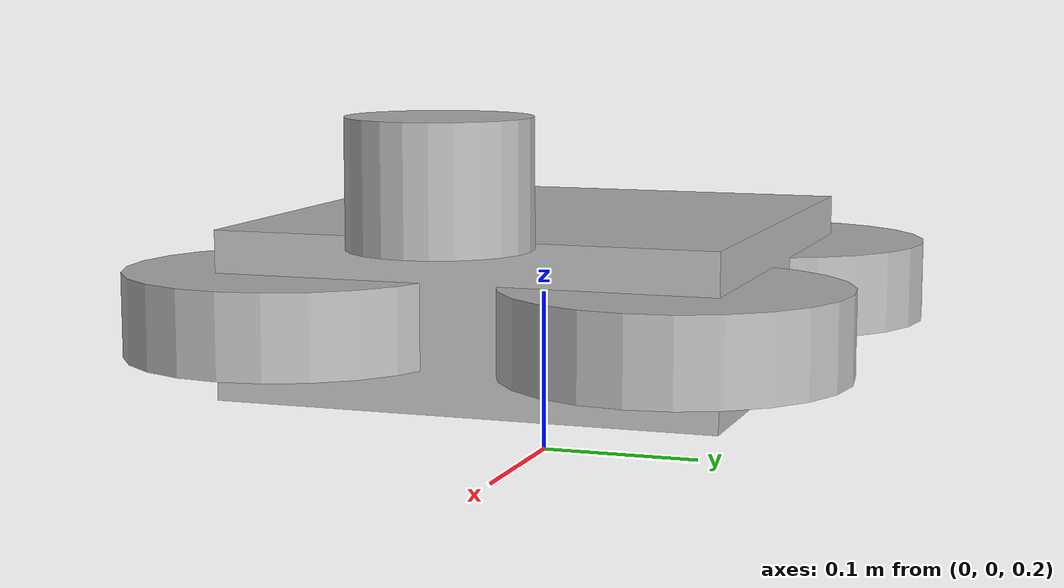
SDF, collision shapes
<?xml version="1.0"?>
<sdf version='1.6'>
    <model name='drone'>
        <link name='base_link'>
        <pose frame=''>0.000013 0.000013 0.3 0 -0 0</pose>
        <inertial>
            <mass> 1.5 </mass>
            <inertia>
                <ixx>0.0347563</ixx>
                <ixy>0</ixy>
                <ixz>0</ixz>
                <iyy>0.0458929</iyy>
                <iyz>0</iyz>
                <izz>0.0977</izz>
            </inertia>
        </inertial>
            <collision name='base_link_inertia_collision'>
                <pose frame=''>0 0 0 0 -0 0</pose>
                <geometry>
                    <box>
                        <size>0.3 0.3 0.1</size>
                    </box>
                </geometry>
            </collision>
            <visual name='base_link_inertia_visual'>
                <pose frame=''>0 0 0 0 -0 0</pose>
                <geometry>
                    <mesh>
                        <uri>model://drone/meshes/drone_base.dae</uri>
                        <scale>0.033 0.033 0.033</scale>
                    </mesh>
                </geometry>
            </visual>
        </link>
        <!-- Propellers -->
        <link name='elica_north'>
        <pose frame=''>0.116 0.116 0.3 0 -0 0</pose>
	    <inertial>
            <mass> 0.005 </mass>
            <inertia>
                <ixx>9.75e-07</ixx>
                <ixy>0</ixy>
                <ixz>0</ixz>
                <iyy>0.000273104</iyy>
                <iyz>0</iyz>
                <izz>0.000274004</izz>
            </inertia>
        </inertial>
            <collision name='elica_north_collision'>
            <pose frame=''>0 0 0 0 -0 0</pose>
                <geometry>
                    <cylinder>
              		    <radius>.1</radius>
              		    <length>.05</length>
            	    </cylinder>
                </geometry>
            </collision>
            <visual name='elica_north_visual'>
            <pose frame=''>0 0 0 0 -0 0</pose>
                <geometry>
                    <mesh>
                        <uri>model://drone/meshes/elica.obj</uri>
                        <scale>0.025 0.025 0.025</scale>
                    </mesh>
                </geometry>
            </visual>
        </link>
        <link name='elica_south'>
        <pose frame=''>-0.116 -0.116 0.3 0 -0 0</pose>
	    <inertial>
            <mass> 0.005 </mass>
            <inertia>
                <ixx>9.75e-07</ixx>
                <ixy>0</ixy>
                <ixz>0</ixz>
                <iyy>0.000273104</iyy>
                <iyz>0</iyz>
                <izz>0.000274004</izz>
            </inertia>
        </inertial>
            <collision name='elica_south_collision'>
            <pose frame=''>0 0 0 0 -0 0</pose>
                <geometry>
                    <cylinder>
                        <radius>.1</radius>
                        <length>.05</length>
                    </cylinder>
                </geometry>
            </collision>
            <visual name='elica_south_visual'>
            <pose frame=''>0 0 0 0 -0 0</pose>
                <geometry>
                    <mesh>
                        <uri>model://drone/meshes/elica.obj</uri>
                        <scale>0.025 0.025 0.025</scale>
                    </mesh>
                </geometry>
            </visual>
        </link>
        <link name='elica_east'>
        <pose frame=''>0.116 -0.116 0.3 0 -0 0</pose>
	    <inertial>
            <mass> 0.005 </mass>
            <inertia>
                <ixx>9.75e-07</ixx>
                <ixy>0</ixy>
                <ixz>0</ixz>
                <iyy>0.000273104</iyy>
                <iyz>0</iyz>
                <izz>0.000274004</izz>
            </inertia>
        </inertial>
            <collision name='elica_east_collision'>
            <pose frame=''>0 0 0 0 -0 0</pose>
                <geometry>
                    <cylinder>
                        <radius>.1</radius>
                        <length>.05</length>
                    </cylinder>
                </geometry>
            </collision>
            <visual name='elica_east_visual'>
            <pose frame=''>0 0 0 0 -0 0</pose>
                <geometry>
                    <mesh>
                        <uri>model://drone/meshes/elica.obj</uri>
                        <scale>0.025 0.025 0.025</scale>
                    </mesh>
                </geometry>
            </visual>
        </link>
        <link name='elica_west'>
        <pose frame=''>-0.116 0.116 0.3 0 -0 0</pose>
	    <inertial>
            <mass> 0.005 </mass>
            <inertia>
                <ixx>9.75e-07</ixx>
                <ixy>0</ixy>
                <ixz>0</ixz>
                <iyy>0.000273104</iyy>
                <iyz>0</iyz>
                <izz>0.000274004</izz>
            </inertia>
        </inertial>
            <collision name='elica_west_collision'>
            <pose frame=''>0 0 0 0 -0 0</pose>
                <geometry>
                    <cylinder>
                        <radius>.1</radius>
                        <length>.05</length>
                    </cylinder>
                </geometry>
            </collision>
            <visual name='elica_west_visual'>
            <pose frame=''>0 0 0 0 -0 0</pose>
                <geometry>
                    <mesh>
                        <uri>model://drone/meshes/elica.obj</uri>
                        <scale>0.025 0.025 0.025</scale>
                    </mesh>
                </geometry>
            </visual>
        </link>

        <!--joints for the propellers-->
        <joint type="revolute" name="north_blade_hinge">
            <child>elica_north</child>
            <parent>base_link</parent>
            <axis>
                <xyz>0 0 1</xyz>
                <use_parent_model_frame>1</use_parent_model_frame>
            </axis>
        </joint>

        <joint type="revolute" name="south_blade_hinge">
            <child>elica_south</child>
            <parent>base_link</parent>
            <axis>
                <xyz>0 0 1</xyz>
                <use_parent_model_frame>1</use_parent_model_frame>
            </axis>
        </joint>

        <joint type="revolute" name="east_blade_hinge">
            <child>elica_east</child>
            <parent>base_link</parent>
            <axis>
                <xyz>0 0 1</xyz>
                <use_parent_model_frame>1</use_parent_model_frame>
            </axis>
        </joint>

        <joint type="revolute" name="west_blade_hinge">
            <child>elica_west</child>
            <parent>base_link</parent>
            <axis>
                <xyz>0 0 1</xyz>
                <use_parent_model_frame>1</use_parent_model_frame>
            </axis>
        </joint>

        <!-- Plugin space -->

        <!-- movement for the drone-->
        <plugin name="simple_movement" filename="lib_simple_movement.so"/>

        <!-- Servo and Velodyne plugins -->
        <include>
            <uri>model://servo_ax12a</uri>
            <pose>0.09 0.00 0.335 0 0 1.58</pose>
        </include>
        <joint name='servo_ax12a_joint' type='fixed'>
            <child>servo_ax12a::Body</child>
            <parent>base_link</parent>
        </joint>

        <include>
            <uri>model://VLP-16</uri>
            <pose>0.175 0.00 0.3485 0 -0 0</pose>
        </include>
        <joint name='vlp16_joint' type='fixed'>
            <child>VLP-16::velodyne_base_link</child>
            <parent>servo_ax12a::Wheel</parent>
        </joint>
    </model>
</sdf>

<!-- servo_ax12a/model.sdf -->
<sdf version='1.6'>
  <model name='servo_ax12a'>
      <plugin name="ax12a" filename="libservo_pkg.so">
        <topic>/gazebo/servos/ax12a</topic>
      </plugin>
    <link name='Body'>
      <inertial>
        <mass>0.05</mass>
        <inertia>
          <ixx>1.643e-05</ixx>
          <ixy>0</ixy>
          <ixz>0</ixz>
          <iyy>1.468e-05</iyy>
          <iyz>0</iyz>
          <izz>1.028e-05</izz>
        </inertia>
        <pose frame=''>0 0 0 0 -0 0</pose>
      </inertial>
      <pose frame=''>0 0 0 0 -0 0</pose>
      <gravity>1</gravity>
      <self_collide>0</self_collide>
      <kinematic>0</kinematic>
      <enable_wind>0</enable_wind>
      <visual name='visual'>
        <pose frame=''>0 0 0 0 -0 0</pose>
        <geometry>
          <box>
            <size>0.032 0.032 0.05</size>
          </box>
        </geometry>
        <material>
          <lighting>1</lighting>
          <script>
            <uri>file://media/materials/scripts/gazebo.material</uri>
            <name>Gazebo/Grey</name>
          </script>
          <shader type='vertex'>
            <normal_map>__default__</normal_map>
          </shader>
          <ambient>0.1 0.1 0.1 1</ambient>
          <diffuse>0.1 0.1 0.1 1</diffuse>
          <specular>0.01 0.01 0.01 1</specular>
          <emissive>0 0 0 1</emissive>
        </material>
        <transparency>0</transparency>
        <cast_shadows>1</cast_shadows>
      </visual>
      <collision name='collision'>
        <laser_retro>0</laser_retro>
        <max_contacts>10</max_contacts>
        <pose frame=''>0 0 0 0 -0 0</pose>
        <geometry>
          <box>
            <size>0.032 0.032 0.05</size>
          </box>
        </geometry>
        <surface>
          <friction>
            <ode>
              <mu>1</mu>
              <mu2>1</mu2>
              <fdir1>0 0 0</fdir1>
              <slip1>0</slip1>
              <slip2>0</slip2>
            </ode>
            <torsional>
              <coefficient>1</coefficient>
              <patch_radius>0</patch_radius>
              <surface_radius>0</surface_radius>
              <use_patch_radius>1</use_patch_radius>
              <ode>
                <slip>0</slip>
              </ode>
            </torsional>
          </friction>
          <bounce>
            <restitution_coefficient>0</restitution_coefficient>
            <threshold>1e+06</threshold>
          </bounce>
          <contact>
            <collide_without_contact>0</collide_without_contact>
            <collide_without_contact_bitmask>1</collide_without_contact_bitmask>
            <collide_bitmask>1</collide_bitmask>
            <ode>
              <soft_cfm>0</soft_cfm>
              <soft_erp>0.2</soft_erp>
              <kp>1e+13</kp>
              <kd>1</kd>
              <max_vel>0.01</max_vel>
              <min_depth>0</min_depth>
            </ode>
            <bullet>
              <split_impulse>1</split_impulse>
              <split_impulse_penetration_threshold>-0.01</split_impulse_penetration_threshold>
              <soft_cfm>0</soft_cfm>
              <soft_erp>0.2</soft_erp>
              <kp>1e+13</kp>
              <kd>1</kd>
            </bullet>
          </contact>
        </surface>
      </collision>
    </link>
    <link name='Wheel'>
      <inertial>
        <mass>0.005</mass>
        <inertia>
          <ixx>1.6e-07</ixx>
          <ixy>0</ixy>
          <ixz>0</ixz>
          <iyy>1.6e-07</iyy>
          <iyz>0</iyz>
          <izz>3e-07</izz>
        </inertia>
        <pose frame=''>0 0 0 0 -0 0</pose>
      </inertial>
      <pose frame=''>0 -0.0185 0.0135 1.5708 -0 0</pose>
      <gravity>1</gravity>
      <self_collide>0</self_collide>
      <kinematic>0</kinematic>
      <enable_wind>0</enable_wind>
      <visual name='visual'>
        <pose frame=''>0 0 0 0 -0 0</pose>
        <geometry>
          <cylinder>
            <radius>0.011</radius>
            <length>0.005</length>
          </cylinder>
        </geometry>
        <material>
          <lighting>1</lighting>
          <script>
            <uri>file://media/materials/scripts/gazebo.material</uri>
            <name>Gazebo/Grey</name>
          </script>
          <shader type='vertex'>
            <normal_map>__default__</normal_map>
          </shader>
          <ambient>0.3 0.3 0.3 1</ambient>
          <diffuse>0.7 0.7 0.7 1</diffuse>
          <specular>0.01 0.01 0.01 1</specular>
          <emissive>0 0 0 1</emissive>
        </material>
        <transparency>0</transparency>
        <cast_shadows>1</cast_shadows>
      </visual>
      <collision name='collision'>
        <laser_retro>0</laser_retro>
        <max_contacts>10</max_contacts>
        <pose frame=''>0 0 0 0 -0 0</pose>
        <geometry>
          <cylinder>
            <radius>0.011</radius>
            <length>0.005</length>
          </cylinder>
        </geometry>
        <surface>
          <friction>
            <ode>
              <mu>1</mu>
              <mu2>1</mu2>
              <fdir1>0 0 0</fdir1>
              <slip1>0</slip1>
              <slip2>0</slip2>
            </ode>
            <torsional>
              <coefficient>1</coefficient>
              <patch_radius>0</patch_radius>
              <surface_radius>0</surface_radius>
              <use_patch_radius>1</use_patch_radius>
              <ode>
                <slip>0</slip>
              </ode>
            </torsional>
          </friction>
          <bounce>
            <restitution_coefficient>0</restitution_coefficient>
            <threshold>1e+06</threshold>
          </bounce>
          <contact>
            <collide_without_contact>0</collide_without_contact>
            <collide_without_contact_bitmask>1</collide_without_contact_bitmask>
            <collide_bitmask>1</collide_bitmask>
            <ode>
              <soft_cfm>0</soft_cfm>
              <soft_erp>0.2</soft_erp>
              <kp>1e+13</kp>
              <kd>1</kd>
              <max_vel>0.01</max_vel>
              <min_depth>0</min_depth>
            </ode>
            <bullet>
              <split_impulse>1</split_impulse>
              <split_impulse_penetration_threshold>-0.01</split_impulse_penetration_threshold>
              <soft_cfm>0</soft_cfm>
              <soft_erp>0.2</soft_erp>
              <kp>1e+13</kp>
              <kd>1</kd>
            </bullet>
          </contact>
        </surface>
      </collision>
    </link>
    <joint name='j_Body_Wheel' type='revolute'>
      <parent>Body</parent>
      <child>Wheel</child>
      <pose frame=''>0 0 0 0 -0 0</pose>
      <axis>
        <xyz>0 0 1</xyz>
        <use_parent_model_frame>0</use_parent_model_frame>
        <limit>
          <lower>-1.79769e+308</lower>
          <upper>1.79769e+308</upper>
          <effort>-1</effort>
          <velocity>-1</velocity>
        </limit>
        <dynamics>
          <spring_reference>0</spring_reference>
          <spring_stiffness>0</spring_stiffness>
          <damping>0.01</damping>
        </dynamics>
      </axis>
      <physics>
        <ode>
          <limit>
            <cfm>0</cfm>
            <erp>0.2</erp>
          </limit>
          <suspension>
            <cfm>0</cfm>
            <erp>0.2</erp>
          </suspension>
        </ode>
      </physics>
    </joint>
    <static>0</static>
    <allow_auto_disable>1</allow_auto_disable>
  </model>
</sdf>

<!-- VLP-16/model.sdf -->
<sdf version='1.6'>
  <model name='VLP-16'>
    <link name='velodyne_base_link'>
      <pose>0 0 0 0 -0 0</pose>
      <inertial>
        <pose>0 0 0.03585 0 -0 0</pose>
        <mass>0.05</mass>
        <inertia>
          <ixx>1e-05</ixx>
          <ixy>0</ixy>
          <ixz>0</ixz>
          <iyy>1e-05</iyy>
          <iyz>0</iyz>
          <izz>1e-05</izz>
        </inertia>
      </inertial>
      <collision name='velodyne_base_link_collision'>
        <pose frame=''>0 0 0.03585 0 -0 0</pose>
        <geometry>
          <cylinder>
            <length>0.0717</length>
            <radius>0.0516</radius>
          </cylinder>
        </geometry>
      </collision>
      <visual name='velodyne_base_link_visual'>
        <pose frame=''>0 0 0 0 -0 0</pose>
        <geometry>
          <mesh>
            <scale>1 1 1</scale>
            <uri>model://VLP-16/meshes/VLP16_base_1.dae</uri>
          </mesh>
        </geometry>
      </visual>
      <visual name='velodyne_base_link_visual_1'>
        <pose frame=''>0 0 0 0 -0 0</pose>
        <geometry>
          <mesh>
            <scale>1 1 1</scale>
            <uri>model://VLP-16/meshes/VLP16_base_2.dae</uri>
          </mesh>
        </geometry>
      </visual>
      <visual name='velodyne_base_link_fixed_joint_lump__velodyne_visual_2'>
        <pose frame=''>0 0 0 0 -0 0</pose>
        <geometry>
          <mesh>
            <scale>1 1 1</scale>
            <uri>model://VLP-16/meshes/VLP16_scan.dae</uri>
          </mesh>
        </geometry>
        <material>
          <script>
            <uri>__default__</uri>
            <name>__default__</name>
          </script>
        </material>
      </visual>
      <gravity>0</gravity>
      <velocity_decay/>         <!-- non c'e -->
      <sensor name='velodyne-VLP16' type='ray'>
        <visualize>0</visualize>
        <update_rate>10</update_rate>
        <ray>
          <scan>
            <horizontal>
              <samples>440</samples>
              <resolution>1</resolution>
              <min_angle>-3.14159</min_angle>
              <max_angle>3.14159</max_angle>
            </horizontal>
            <vertical>
              <samples>16</samples>
              <resolution>1</resolution>
              <min_angle>-0.261799</min_angle>
              <max_angle>0.261799</max_angle>
            </vertical>
          </scan>
          <range>
            <min>0.3</min>
            <max>131</max>
            <resolution>0.001</resolution>
          </range>
          <noise>
            <type>gaussian</type>
            <mean>0</mean>
            <stddev>0</stddev>
          </noise>
        </ray>
        <plugin name='gazebo_ros_laser_controller' filename='libgazebo_ros_velodyne_laser.so'>
          <topicName>/velodyne_points</topicName>
          <frameName>velodyne_base</frameName>
          <min_range>0.9</min_range>
          <max_range>65.0</max_range>
          <gaussianNoise>0.008</gaussianNoise>
        </plugin>
        <pose>0 0 0.0377 0 -0 0</pose>
      </sensor>

    </link>
  </model>
</sdf>
